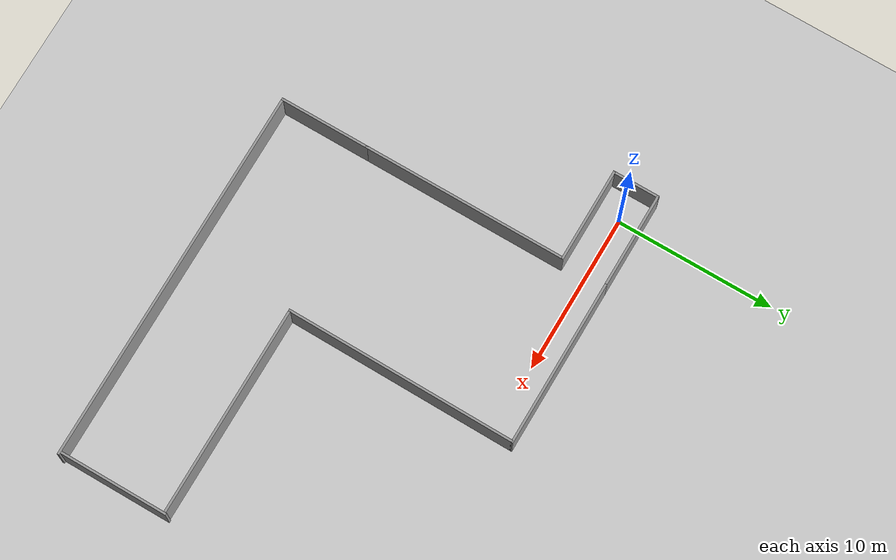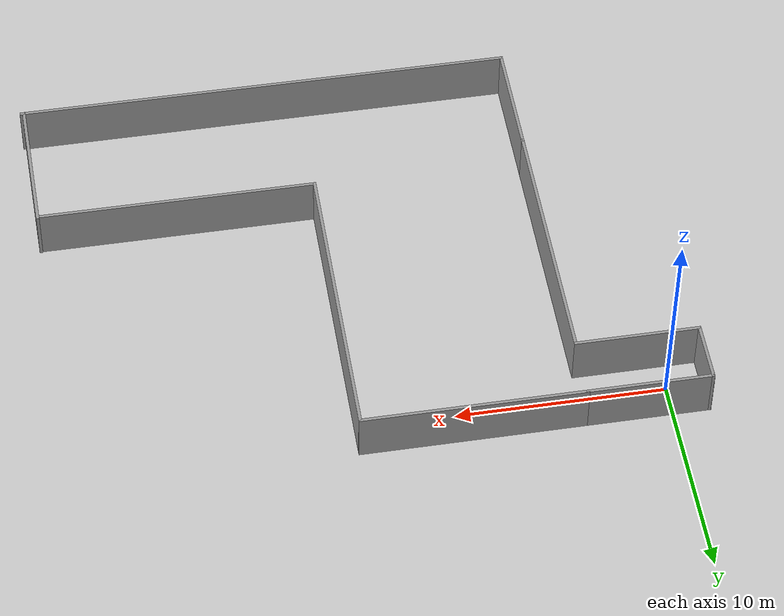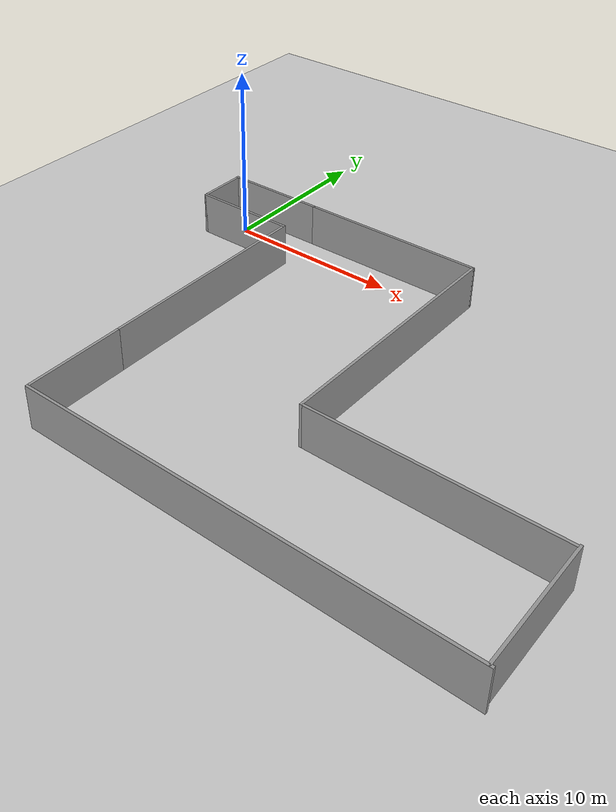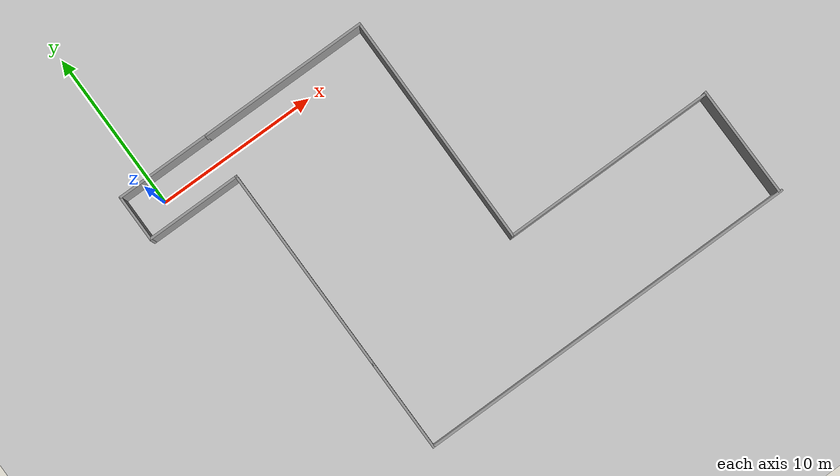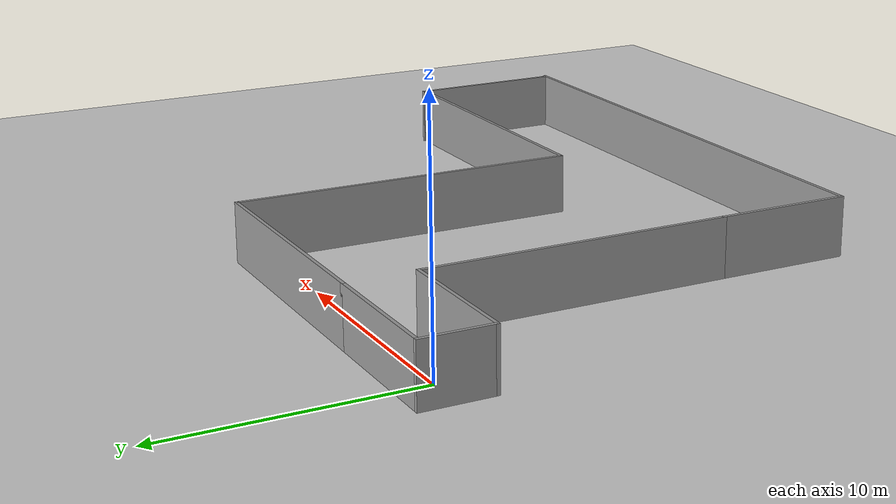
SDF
<?xml version="1.0" ?>
<sdf version="1.4">
  <world name="test_env">
    <include>
      <uri>model://ground_plane</uri>
    </include>
    <include>
      <uri>model://sun</uri>
    </include>
    <include>
      <uri>model://test_env</uri>
      <name>test_environment</name>
      <pose>13.133149 -9.260904 0 0 0 0</pose>
    </include>
  </world>
</sdf>

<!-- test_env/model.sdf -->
<sdf version='1.6'>
  <model name='test_env'>
    <pose frame=''>12.6789 -9.3566 0 0 -0 0</pose>
    <link name='Wall_0'>
      <collision name='Wall_0_Collision'>
        <geometry>
          <box>
            <size>3 0.15 2.5</size>
          </box>
        </geometry>
        <pose frame=''>0 0 1.25 0 -0 0</pose>
      </collision>
      <visual name='Wall_0_Visual'>
        <pose frame=''>0 0 1.25 0 -0 0</pose>
        <geometry>
          <box>
            <size>3 0.15 2.5</size>
          </box>
        </geometry>
        <material>
          <script>
            <uri>file://media/materials/scripts/gazebo.material</uri>
            <name>Gazebo/Grey</name>
          </script>
          <ambient>1 1 1 1</ambient>
        </material>
      </visual>
      <pose frame=''>-14.8651 9.225 0 0 -0 1.5708</pose>
    </link>
    <link name='Wall_10'>
      <collision name='Wall_10_Collision'>
        <geometry>
          <box>
            <size>6 0.15 2.5</size>
          </box>
        </geometry>
        <pose frame=''>0 0 1.25 0 -0 0</pose>
      </collision>
      <visual name='Wall_10_Visual'>
        <pose frame=''>0 0 1.25 0 -0 0</pose>
        <geometry>
          <box>
            <size>6 0.15 2.5</size>
          </box>
        </geometry>
        <material>
          <script>
            <uri>file://media/materials/scripts/gazebo.material</uri>
            <name>Gazebo/Grey</name>
          </script>
          <ambient>1 1 1 1</ambient>
        </material>
      </visual>
      <pose frame=''>-11.9401 7.8 0 0 -0 0</pose>
    </link>
    <link name='Wall_14'>
      <collision name='Wall_14_Collision'>
        <geometry>
          <box>
            <size>13 0.15 2.5</size>
          </box>
        </geometry>
        <pose frame=''>0 0 1.25 0 -0 0</pose>
      </collision>
      <visual name='Wall_14_Visual'>
        <pose frame=''>0 0 1.25 0 -0 0</pose>
        <geometry>
          <box>
            <size>13 0.15 2.5</size>
          </box>
        </geometry>
        <material>
          <script>
            <uri>file://media/materials/scripts/gazebo.material</uri>
            <name>Gazebo/Grey</name>
          </script>
          <ambient>1 1 1 1</ambient>
        </material>
      </visual>
      <pose frame=''>-9.01511 1.375 0 0 0 -1.5708</pose>
    </link>
    <link name='Wall_16'>
      <collision name='Wall_16_Collision'>
        <geometry>
          <box>
            <size>10.6803 0.15 2.5</size>
          </box>
        </geometry>
        <pose frame=''>0 0 1.25 0 -0 0</pose>
      </collision>
      <visual name='Wall_16_Visual'>
        <pose frame=''>0 0 1.25 0 -0 0</pose>
        <geometry>
          <box>
            <size>10.6803 0.15 2.5</size>
          </box>
        </geometry>
        <material>
          <script>
            <uri>file://media/materials/scripts/gazebo.material</uri>
            <name>Gazebo/Grey</name>
          </script>
          <ambient>1 1 1 1</ambient>
        </material>
      </visual>
      <pose frame=''>-3.75011 10.65 0 0 -0 0</pose>
    </link>
    <link name='Wall_18'>
      <collision name='Wall_18_Collision'>
        <geometry>
          <box>
            <size>14.5755 0.15 2.5</size>
          </box>
        </geometry>
        <pose frame=''>0 0 1.25 0 -0 0</pose>
      </collision>
      <visual name='Wall_18_Visual'>
        <pose frame=''>0 0 1.25 0 -0 0</pose>
        <geometry>
          <box>
            <size>14.5755 0.15 2.5</size>
          </box>
        </geometry>
        <material>
          <script>
            <uri>file://media/materials/scripts/gazebo.material</uri>
            <name>Gazebo/Grey</name>
          </script>
          <ambient>1 1 1 1</ambient>
        </material>
      </visual>
      <pose frame=''>1.45406 3.35751 0 0 0 -1.57923</pose>
    </link>
    <link name='Wall_2'>
      <collision name='Wall_2_Collision'>
        <geometry>
          <box>
            <size>6 0.15 2.5</size>
          </box>
        </geometry>
        <pose frame=''>0 0 1.25 0 -0 0</pose>
      </collision>
      <visual name='Wall_2_Visual'>
        <pose frame=''>0 0 1.25 0 -0 0</pose>
        <geometry>
          <box>
            <size>6 0.15 2.5</size>
          </box>
        </geometry>
        <material>
          <script>
            <uri>file://media/materials/scripts/gazebo.material</uri>
            <name>Gazebo/Grey</name>
          </script>
          <ambient>1 1 1 1</ambient>
        </material>
      </visual>
      <pose frame=''>-11.9401 10.65 0 0 -0 0</pose>
    </link>
    <link name='Wall_22'>
      <collision name='Wall_22_Collision'>
        <geometry>
          <box>
            <size>13.25 0.15 2.5</size>
          </box>
        </geometry>
        <pose frame=''>0 0 1.25 0 -0 0</pose>
      </collision>
      <visual name='Wall_22_Visual'>
        <pose frame=''>0 0 1.25 0 -0 0</pose>
        <geometry>
          <box>
            <size>13.25 0.15 2.5</size>
          </box>
        </geometry>
        <material>
          <script>
            <uri>file://media/materials/scripts/gazebo.material</uri>
            <name>Gazebo/Grey</name>
          </script>
          <ambient>1 1 1 1</ambient>
        </material>
      </visual>
      <pose frame=''>8.06489 -3.85497 0 0 -0 0</pose>
    </link>
    <link name='Wall_26'>
      <collision name='Wall_26_Collision'>
        <geometry>
          <box>
            <size>5.75 0.15 2.5</size>
          </box>
        </geometry>
        <pose frame=''>0 0 1.25 0 -0 0</pose>
      </collision>
      <visual name='Wall_26_Visual'>
        <pose frame=''>0 0 1.25 0 -0 0</pose>
        <geometry>
          <box>
            <size>5.75 0.15 2.5</size>
          </box>
        </geometry>
        <material>
          <script>
            <uri>file://media/materials/scripts/gazebo.material</uri>
            <name>Gazebo/Grey</name>
          </script>
          <ambient>1 1 1 1</ambient>
        </material>
      </visual>
      <pose frame=''>-9.01511 -7.85 0 0 0 -1.5708</pose>
    </link>
    <link name='Wall_27'>
      <collision name='Wall_27_Collision'>
        <geometry>
          <box>
            <size>24.0302 0.15 2.5</size>
          </box>
        </geometry>
        <pose frame=''>0 0 1.25 0 -0 0</pose>
      </collision>
      <visual name='Wall_27_Visual'>
        <pose frame=''>0 0 1.25 0 -0 0</pose>
        <geometry>
          <box>
            <size>24.0302 0.15 2.5</size>
          </box>
        </geometry>
        <material>
          <script>
            <uri>file://media/materials/scripts/gazebo.material</uri>
            <name>Gazebo/Grey</name>
          </script>
          <ambient>1 1 1 1</ambient>
        </material>
      </visual>
      <pose frame=''>2.925 -10.65 0 0 -0 0</pose>
    </link>
    <link name='Wall_28'>
      <collision name='Wall_28_Collision'>
        <geometry>
          <box>
            <size>7 0.15 2.5</size>
          </box>
        </geometry>
        <pose frame=''>0 0 1.25 0 -0 0</pose>
      </collision>
      <visual name='Wall_28_Visual'>
        <pose frame=''>0 0 1.25 0 -0 0</pose>
        <geometry>
          <box>
            <size>7 0.15 2.5</size>
          </box>
        </geometry>
        <material>
          <script>
            <uri>file://media/materials/scripts/gazebo.material</uri>
            <name>Gazebo/Grey</name>
          </script>
          <ambient>1 1 1 1</ambient>
        </material>
      </visual>
      <pose frame=''>14.7434 -7.225 0 0 -0 1.5708</pose>
    </link>
    <static>1</static>
  </model>
</sdf>
